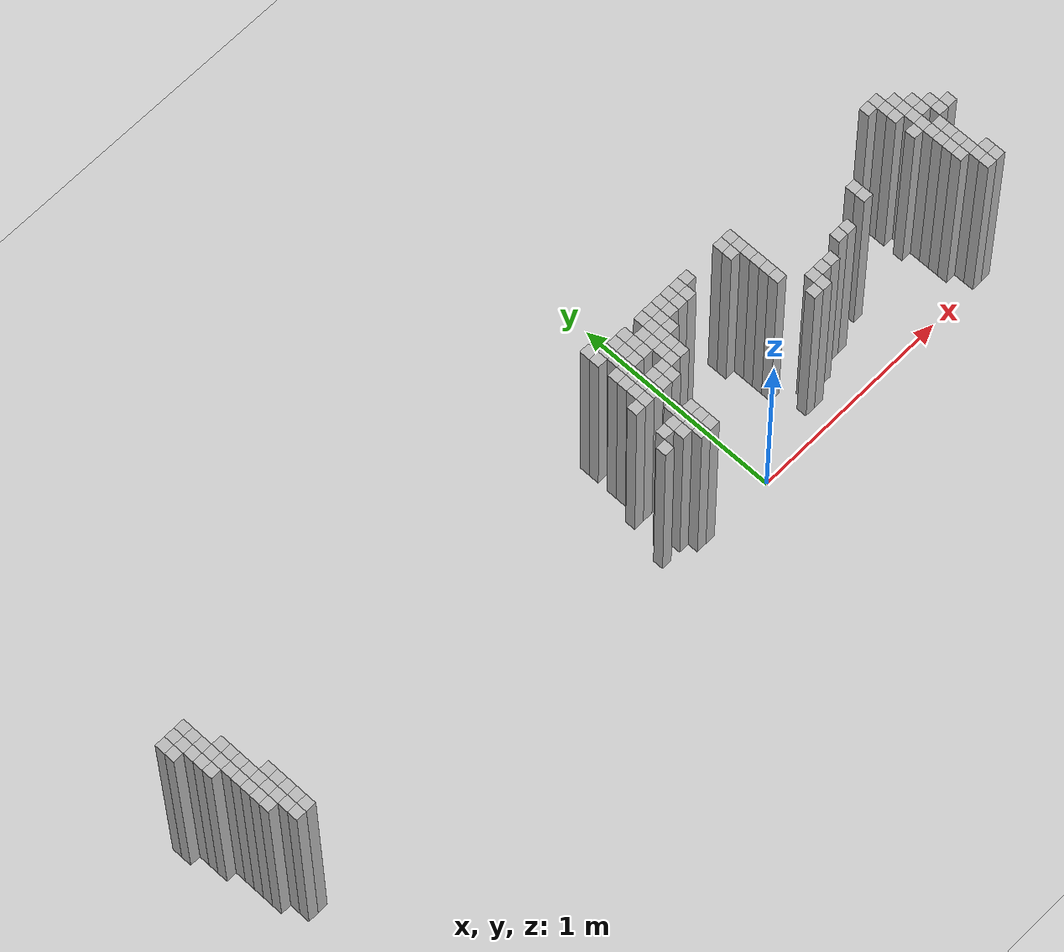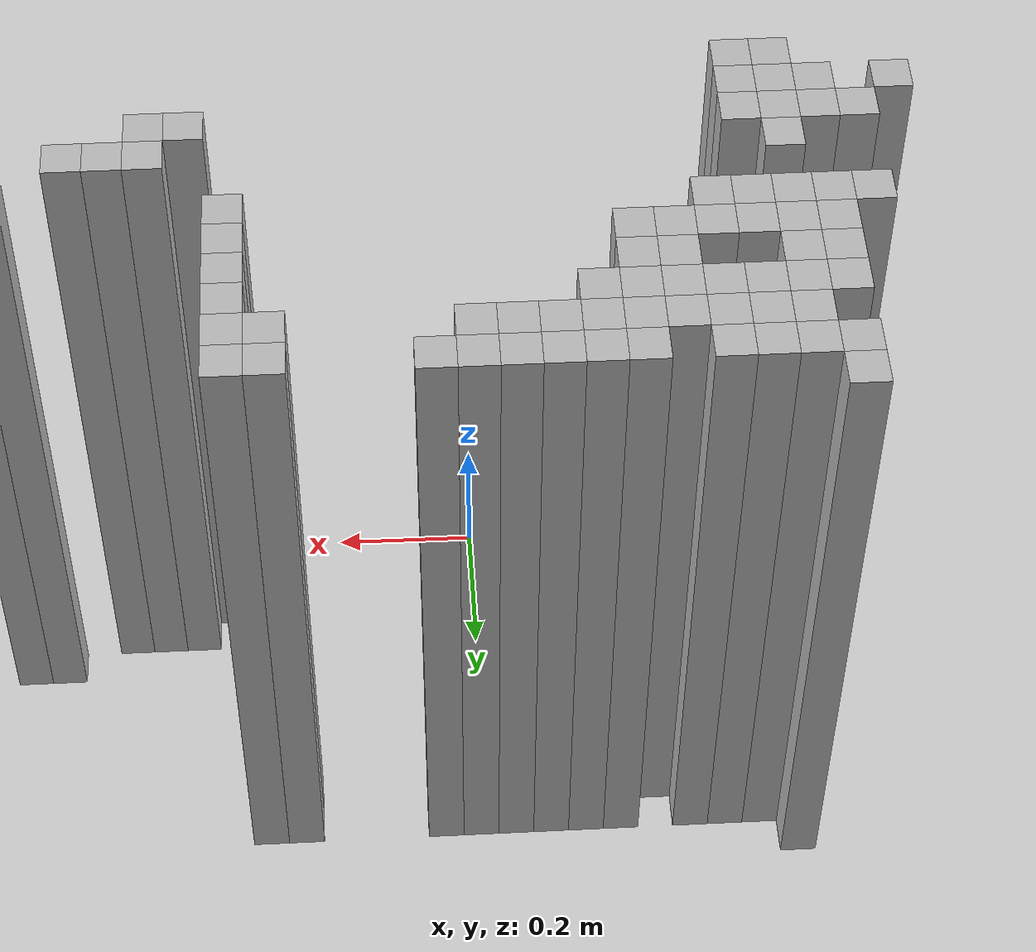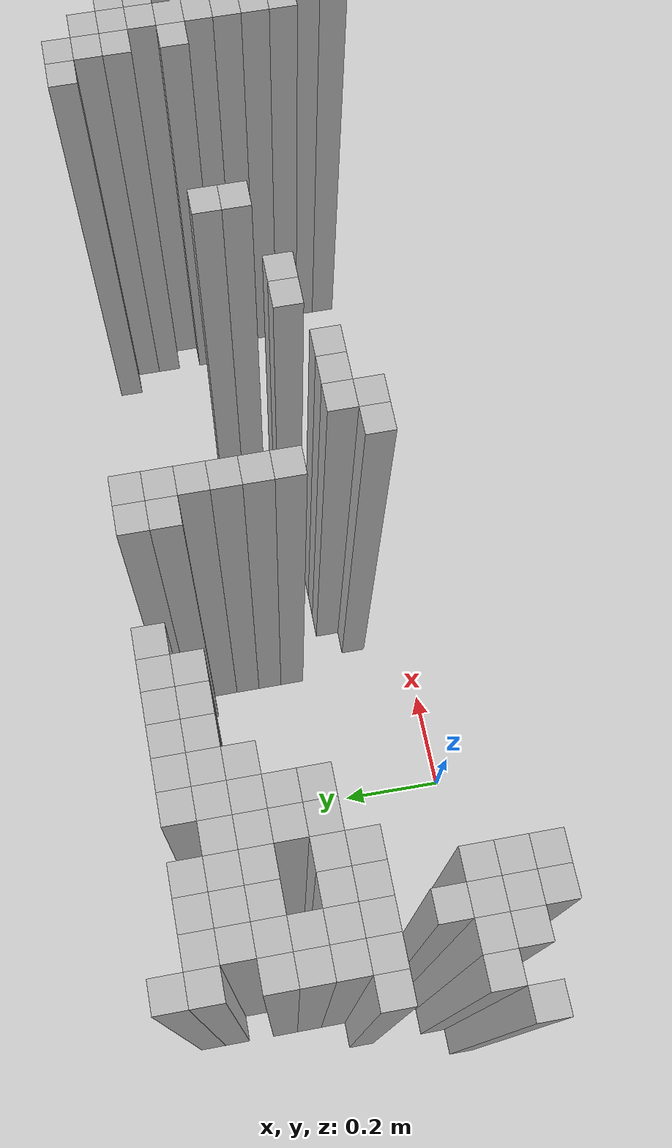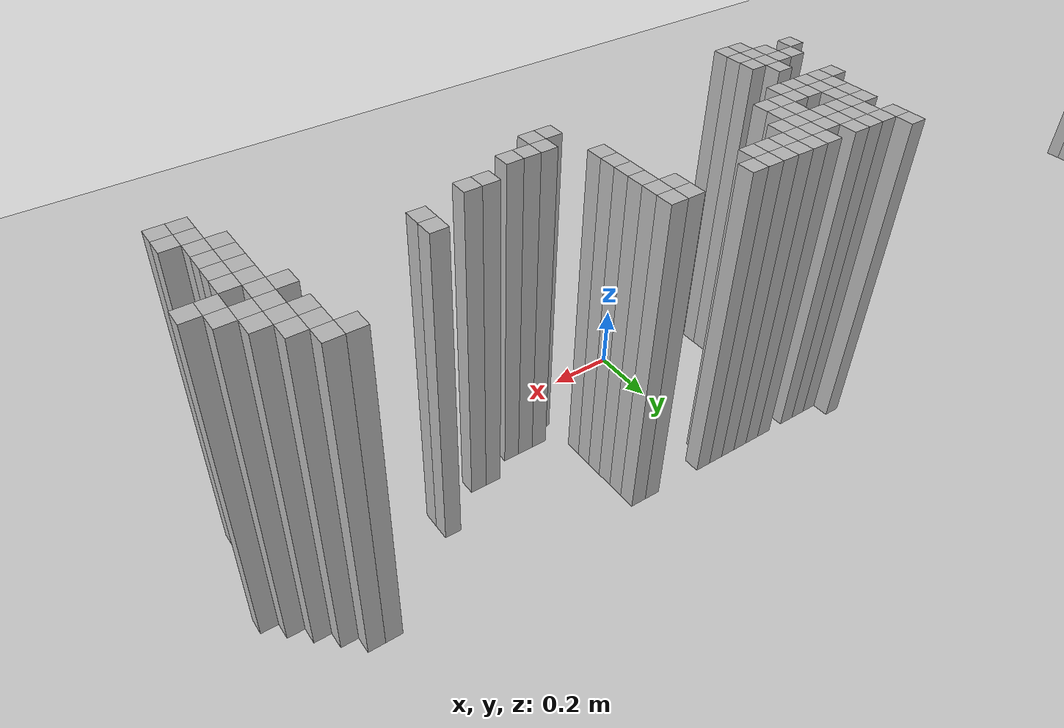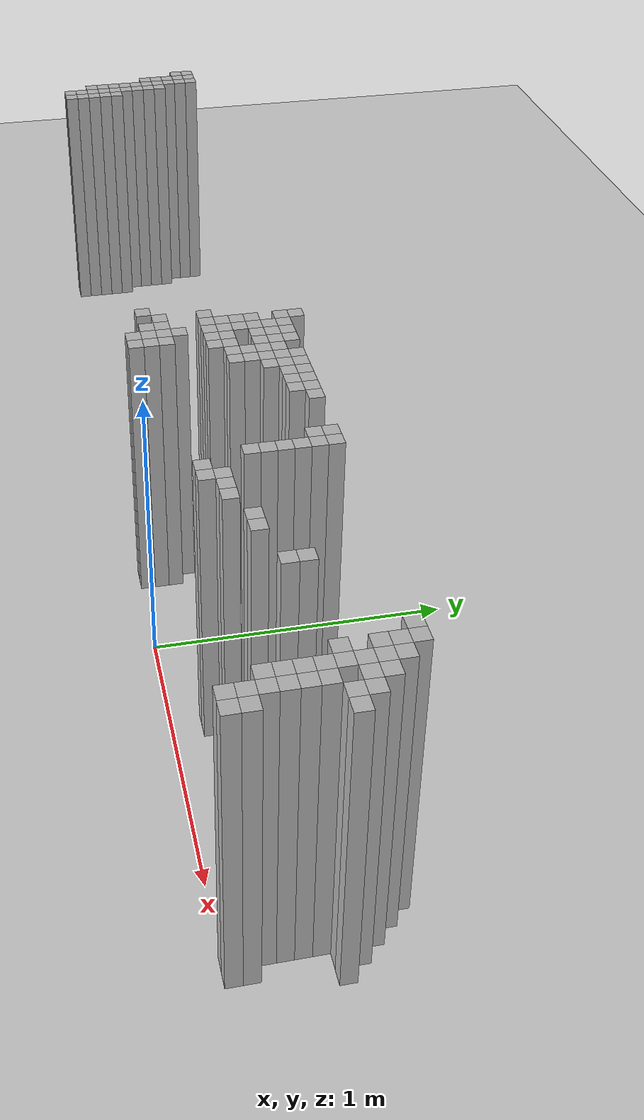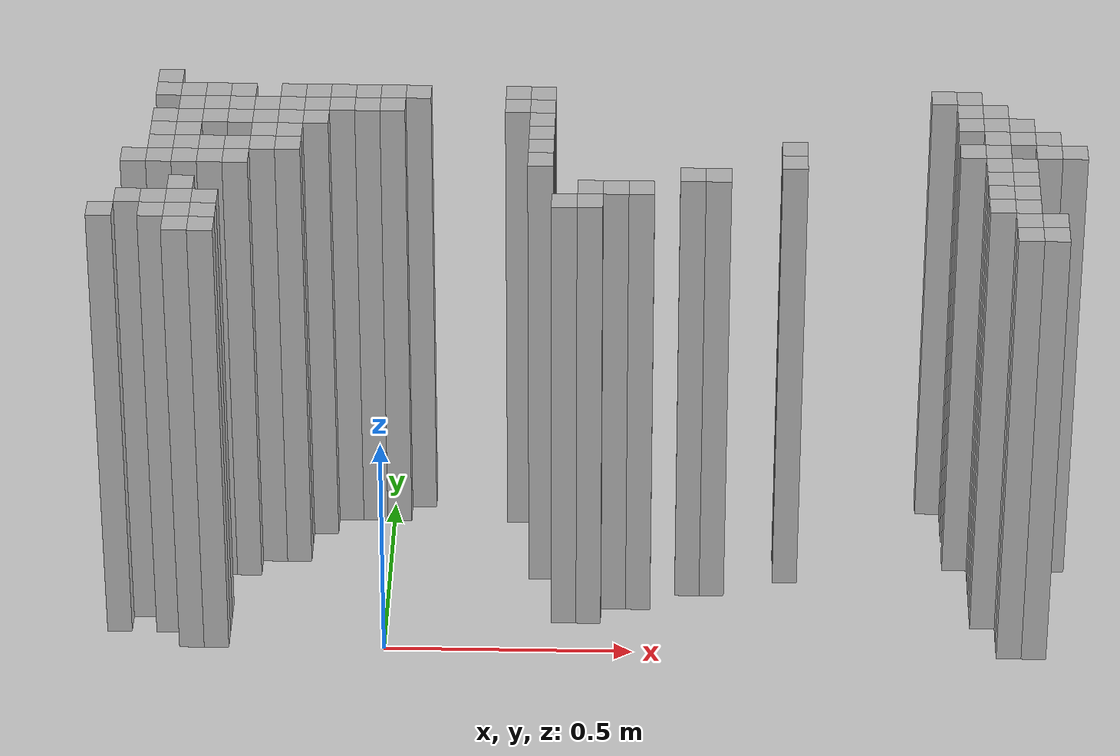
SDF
<sdf version="1.6">
 <world name="default">
  <include><uri>model://ground_plane</uri></include>
  <include><uri>model://sun</uri></include>
  <model name="wall_247">
   <static>true</static>
   <pose>-2.7399999999999998 0.5699999999999998 0.5 0 0 0</pose>
   <link name="link">
    <collision name="collision"><geometry><box><size>0.05 0.05 1</size></box></geometry></collision>
    <visual name="visual"><geometry><box><size>0.05 0.05 1</size></box></geometry></visual>
   </link>
  </model>
  <model name="wall_248">
   <static>true</static>
   <pose>-2.69 0.5699999999999998 0.5 0 0 0</pose>
   <link name="link">
    <collision name="collision"><geometry><box><size>0.05 0.05 1</size></box></geometry></collision>
    <visual name="visual"><geometry><box><size>0.05 0.05 1</size></box></geometry></visual>
   </link>
  </model>
  <model name="wall_249">
   <static>true</static>
   <pose>-2.6399999999999997 0.5699999999999998 0.5 0 0 0</pose>
   <link name="link">
    <collision name="collision"><geometry><box><size>0.05 0.05 1</size></box></geometry></collision>
    <visual name="visual"><geometry><box><size>0.05 0.05 1</size></box></geometry></visual>
   </link>
  </model>
  <model name="wall_250">
   <static>true</static>
   <pose>-0.4399999999999995 0.5699999999999998 0.5 0 0 0</pose>
   <link name="link">
    <collision name="collision"><geometry><box><size>0.05 0.05 1</size></box></geometry></collision>
    <visual name="visual"><geometry><box><size>0.05 0.05 1</size></box></geometry></visual>
   </link>
  </model>
  <model name="wall_260">
   <static>true</static>
   <pose>-2.7399999999999998 0.52 0.5 0 0 0</pose>
   <link name="link">
    <collision name="collision"><geometry><box><size>0.05 0.05 1</size></box></geometry></collision>
    <visual name="visual"><geometry><box><size>0.05 0.05 1</size></box></geometry></visual>
   </link>
  </model>
  <model name="wall_261">
   <static>true</static>
   <pose>-2.69 0.52 0.5 0 0 0</pose>
   <link name="link">
    <collision name="collision"><geometry><box><size>0.05 0.05 1</size></box></geometry></collision>
    <visual name="visual"><geometry><box><size>0.05 0.05 1</size></box></geometry></visual>
   </link>
  </model>
  <model name="wall_262">
   <static>true</static>
   <pose>-2.6399999999999997 0.52 0.5 0 0 0</pose>
   <link name="link">
    <collision name="collision"><geometry><box><size>0.05 0.05 1</size></box></geometry></collision>
    <visual name="visual"><geometry><box><size>0.05 0.05 1</size></box></geometry></visual>
   </link>
  </model>
  <model name="wall_263">
   <static>true</static>
   <pose>-0.4399999999999995 0.52 0.5 0 0 0</pose>
   <link name="link">
    <collision name="collision"><geometry><box><size>0.05 0.05 1</size></box></geometry></collision>
    <visual name="visual"><geometry><box><size>0.05 0.05 1</size></box></geometry></visual>
   </link>
  </model>
  <model name="wall_264">
   <static>true</static>
   <pose>-0.3899999999999997 0.52 0.5 0 0 0</pose>
   <link name="link">
    <collision name="collision"><geometry><box><size>0.05 0.05 1</size></box></geometry></collision>
    <visual name="visual"><geometry><box><size>0.05 0.05 1</size></box></geometry></visual>
   </link>
  </model>
  <model name="wall_265">
   <static>true</static>
   <pose>-0.33999999999999986 0.52 0.5 0 0 0</pose>
   <link name="link">
    <collision name="collision"><geometry><box><size>0.05 0.05 1</size></box></geometry></collision>
    <visual name="visual"><geometry><box><size>0.05 0.05 1</size></box></geometry></visual>
   </link>
  </model>
  <model name="wall_266">
   <static>true</static>
   <pose>-0.2899999999999996 0.52 0.5 0 0 0</pose>
   <link name="link">
    <collision name="collision"><geometry><box><size>0.05 0.05 1</size></box></geometry></collision>
    <visual name="visual"><geometry><box><size>0.05 0.05 1</size></box></geometry></visual>
   </link>
  </model>
  <model name="wall_267">
   <static>true</static>
   <pose>-0.1899999999999995 0.52 0.5 0 0 0</pose>
   <link name="link">
    <collision name="collision"><geometry><box><size>0.05 0.05 1</size></box></geometry></collision>
    <visual name="visual"><geometry><box><size>0.05 0.05 1</size></box></geometry></visual>
   </link>
  </model>
  <model name="wall_268">
   <static>true</static>
   <pose>-0.13999999999999968 0.52 0.5 0 0 0</pose>
   <link name="link">
    <collision name="collision"><geometry><box><size>0.05 0.05 1</size></box></geometry></collision>
    <visual name="visual"><geometry><box><size>0.05 0.05 1</size></box></geometry></visual>
   </link>
  </model>
  <model name="wall_269">
   <static>true</static>
   <pose>-0.08999999999999986 0.52 0.5 0 0 0</pose>
   <link name="link">
    <collision name="collision"><geometry><box><size>0.05 0.05 1</size></box></geometry></collision>
    <visual name="visual"><geometry><box><size>0.05 0.05 1</size></box></geometry></visual>
   </link>
  </model>
  <model name="wall_270">
   <static>true</static>
   <pose>-0.03999999999999959 0.52 0.5 0 0 0</pose>
   <link name="link">
    <collision name="collision"><geometry><box><size>0.05 0.05 1</size></box></geometry></collision>
    <visual name="visual"><geometry><box><size>0.05 0.05 1</size></box></geometry></visual>
   </link>
  </model>
  <model name="wall_271">
   <static>true</static>
   <pose>0.010000000000000231 0.52 0.5 0 0 0</pose>
   <link name="link">
    <collision name="collision"><geometry><box><size>0.05 0.05 1</size></box></geometry></collision>
    <visual name="visual"><geometry><box><size>0.05 0.05 1</size></box></geometry></visual>
   </link>
  </model>
  <model name="wall_272">
   <static>true</static>
   <pose>0.0600000000000005 0.52 0.5 0 0 0</pose>
   <link name="link">
    <collision name="collision"><geometry><box><size>0.05 0.05 1</size></box></geometry></collision>
    <visual name="visual"><geometry><box><size>0.05 0.05 1</size></box></geometry></visual>
   </link>
  </model>
  <model name="wall_273">
   <static>true</static>
   <pose>0.26000000000000023 0.52 0.5 0 0 0</pose>
   <link name="link">
    <collision name="collision"><geometry><box><size>0.05 0.05 1</size></box></geometry></collision>
    <visual name="visual"><geometry><box><size>0.05 0.05 1</size></box></geometry></visual>
   </link>
  </model>
  <model name="wall_274">
   <static>true</static>
   <pose>0.3100000000000005 0.52 0.5 0 0 0</pose>
   <link name="link">
    <collision name="collision"><geometry><box><size>0.05 0.05 1</size></box></geometry></collision>
    <visual name="visual"><geometry><box><size>0.05 0.05 1</size></box></geometry></visual>
   </link>
  </model>
  <model name="wall_275">
   <static>true</static>
   <pose>1.1100000000000003 0.52 0.5 0 0 0</pose>
   <link name="link">
    <collision name="collision"><geometry><box><size>0.05 0.05 1</size></box></geometry></collision>
    <visual name="visual"><geometry><box><size>0.05 0.05 1</size></box></geometry></visual>
   </link>
  </model>
  <model name="wall_276">
   <static>true</static>
   <pose>1.1600000000000001 0.52 0.5 0 0 0</pose>
   <link name="link">
    <collision name="collision"><geometry><box><size>0.05 0.05 1</size></box></geometry></collision>
    <visual name="visual"><geometry><box><size>0.05 0.05 1</size></box></geometry></visual>
   </link>
  </model>
  <model name="wall_277">
   <static>true</static>
   <pose>-2.69 0.4700000000000002 0.5 0 0 0</pose>
   <link name="link">
    <collision name="collision"><geometry><box><size>0.05 0.05 1</size></box></geometry></collision>
    <visual name="visual"><geometry><box><size>0.05 0.05 1</size></box></geometry></visual>
   </link>
  </model>
  <model name="wall_278">
   <static>true</static>
   <pose>-2.6399999999999997 0.4700000000000002 0.5 0 0 0</pose>
   <link name="link">
    <collision name="collision"><geometry><box><size>0.05 0.05 1</size></box></geometry></collision>
    <visual name="visual"><geometry><box><size>0.05 0.05 1</size></box></geometry></visual>
   </link>
  </model>
  <model name="wall_279">
   <static>true</static>
   <pose>-0.3899999999999997 0.4700000000000002 0.5 0 0 0</pose>
   <link name="link">
    <collision name="collision"><geometry><box><size>0.05 0.05 1</size></box></geometry></collision>
    <visual name="visual"><geometry><box><size>0.05 0.05 1</size></box></geometry></visual>
   </link>
  </model>
  <model name="wall_280">
   <static>true</static>
   <pose>-0.33999999999999986 0.4700000000000002 0.5 0 0 0</pose>
   <link name="link">
    <collision name="collision"><geometry><box><size>0.05 0.05 1</size></box></geometry></collision>
    <visual name="visual"><geometry><box><size>0.05 0.05 1</size></box></geometry></visual>
   </link>
  </model>
  <model name="wall_281">
   <static>true</static>
   <pose>-0.2899999999999996 0.4700000000000002 0.5 0 0 0</pose>
   <link name="link">
    <collision name="collision"><geometry><box><size>0.05 0.05 1</size></box></geometry></collision>
    <visual name="visual"><geometry><box><size>0.05 0.05 1</size></box></geometry></visual>
   </link>
  </model>
  <model name="wall_282">
   <static>true</static>
   <pose>-0.23999999999999977 0.4700000000000002 0.5 0 0 0</pose>
   <link name="link">
    <collision name="collision"><geometry><box><size>0.05 0.05 1</size></box></geometry></collision>
    <visual name="visual"><geometry><box><size>0.05 0.05 1</size></box></geometry></visual>
   </link>
  </model>
  <model name="wall_283">
   <static>true</static>
   <pose>-0.1899999999999995 0.4700000000000002 0.5 0 0 0</pose>
   <link name="link">
    <collision name="collision"><geometry><box><size>0.05 0.05 1</size></box></geometry></collision>
    <visual name="visual"><geometry><box><size>0.05 0.05 1</size></box></geometry></visual>
   </link>
  </model>
  <model name="wall_284">
   <static>true</static>
   <pose>-0.13999999999999968 0.4700000000000002 0.5 0 0 0</pose>
   <link name="link">
    <collision name="collision"><geometry><box><size>0.05 0.05 1</size></box></geometry></collision>
    <visual name="visual"><geometry><box><size>0.05 0.05 1</size></box></geometry></visual>
   </link>
  </model>
  <model name="wall_285">
   <static>true</static>
   <pose>-0.08999999999999986 0.4700000000000002 0.5 0 0 0</pose>
   <link name="link">
    <collision name="collision"><geometry><box><size>0.05 0.05 1</size></box></geometry></collision>
    <visual name="visual"><geometry><box><size>0.05 0.05 1</size></box></geometry></visual>
   </link>
  </model>
  <model name="wall_286">
   <static>true</static>
   <pose>-0.03999999999999959 0.4700000000000002 0.5 0 0 0</pose>
   <link name="link">
    <collision name="collision"><geometry><box><size>0.05 0.05 1</size></box></geometry></collision>
    <visual name="visual"><geometry><box><size>0.05 0.05 1</size></box></geometry></visual>
   </link>
  </model>
  <model name="wall_287">
   <static>true</static>
   <pose>0.010000000000000231 0.4700000000000002 0.5 0 0 0</pose>
   <link name="link">
    <collision name="collision"><geometry><box><size>0.05 0.05 1</size></box></geometry></collision>
    <visual name="visual"><geometry><box><size>0.05 0.05 1</size></box></geometry></visual>
   </link>
  </model>
  <model name="wall_288">
   <static>true</static>
   <pose>0.26000000000000023 0.4700000000000002 0.5 0 0 0</pose>
   <link name="link">
    <collision name="collision"><geometry><box><size>0.05 0.05 1</size></box></geometry></collision>
    <visual name="visual"><geometry><box><size>0.05 0.05 1</size></box></geometry></visual>
   </link>
  </model>
  <model name="wall_289">
   <static>true</static>
   <pose>0.3100000000000005 0.4700000000000002 0.5 0 0 0</pose>
   <link name="link">
    <collision name="collision"><geometry><box><size>0.05 0.05 1</size></box></geometry></collision>
    <visual name="visual"><geometry><box><size>0.05 0.05 1</size></box></geometry></visual>
   </link>
  </model>
  <model name="wall_290">
   <static>true</static>
   <pose>1.1600000000000001 0.4700000000000002 0.5 0 0 0</pose>
   <link name="link">
    <collision name="collision"><geometry><box><size>0.05 0.05 1</size></box></geometry></collision>
    <visual name="visual"><geometry><box><size>0.05 0.05 1</size></box></geometry></visual>
   </link>
  </model>
  <model name="wall_291">
   <static>true</static>
   <pose>1.21 0.4700000000000002 0.5 0 0 0</pose>
   <link name="link">
    <collision name="collision"><geometry><box><size>0.05 0.05 1</size></box></geometry></collision>
    <visual name="visual"><geometry><box><size>0.05 0.05 1</size></box></geometry></visual>
   </link>
  </model>
  <model name="wall_292">
   <static>true</static>
   <pose>-2.69 0.41999999999999993 0.5 0 0 0</pose>
   <link name="link">
    <collision name="collision"><geometry><box><size>0.05 0.05 1</size></box></geometry></collision>
    <visual name="visual"><geometry><box><size>0.05 0.05 1</size></box></geometry></visual>
   </link>
  </model>
  <model name="wall_293">
   <static>true</static>
   <pose>-2.6399999999999997 0.41999999999999993 0.5 0 0 0</pose>
   <link name="link">
    <collision name="collision"><geometry><box><size>0.05 0.05 1</size></box></geometry></collision>
    <visual name="visual"><geometry><box><size>0.05 0.05 1</size></box></geometry></visual>
   </link>
  </model>
  <model name="wall_294">
   <static>true</static>
   <pose>-2.59 0.41999999999999993 0.5 0 0 0</pose>
   <link name="link">
    <collision name="collision"><geometry><box><size>0.05 0.05 1</size></box></geometry></collision>
    <visual name="visual"><geometry><box><size>0.05 0.05 1</size></box></geometry></visual>
   </link>
  </model>
  <model name="wall_295">
   <static>true</static>
   <pose>-0.4399999999999995 0.41999999999999993 0.5 0 0 0</pose>
   <link name="link">
    <collision name="collision"><geometry><box><size>0.05 0.05 1</size></box></geometry></collision>
    <visual name="visual"><geometry><box><size>0.05 0.05 1</size></box></geometry></visual>
   </link>
  </model>
  <model name="wall_296">
   <static>true</static>
   <pose>-0.3899999999999997 0.41999999999999993 0.5 0 0 0</pose>
   <link name="link">
    <collision name="collision"><geometry><box><size>0.05 0.05 1</size></box></geometry></collision>
    <visual name="visual"><geometry><box><size>0.05 0.05 1</size></box></geometry></visual>
   </link>
  </model>
  <model name="wall_297">
   <static>true</static>
   <pose>-0.33999999999999986 0.41999999999999993 0.5 0 0 0</pose>
   <link name="link">
    <collision name="collision"><geometry><box><size>0.05 0.05 1</size></box></geometry></collision>
    <visual name="visual"><geometry><box><size>0.05 0.05 1</size></box></geometry></visual>
   </link>
  </model>
  <model name="wall_298">
   <static>true</static>
   <pose>-0.2899999999999996 0.41999999999999993 0.5 0 0 0</pose>
   <link name="link">
    <collision name="collision"><geometry><box><size>0.05 0.05 1</size></box></geometry></collision>
    <visual name="visual"><geometry><box><size>0.05 0.05 1</size></box></geometry></visual>
   </link>
  </model>
  <model name="wall_299">
   <static>true</static>
   <pose>-0.23999999999999977 0.41999999999999993 0.5 0 0 0</pose>
   <link name="link">
    <collision name="collision"><geometry><box><size>0.05 0.05 1</size></box></geometry></collision>
    <visual name="visual"><geometry><box><size>0.05 0.05 1</size></box></geometry></visual>
   </link>
  </model>
  <model name="wall_300">
   <static>true</static>
   <pose>-0.1899999999999995 0.41999999999999993 0.5 0 0 0</pose>
   <link name="link">
    <collision name="collision"><geometry><box><size>0.05 0.05 1</size></box></geometry></collision>
    <visual name="visual"><geometry><box><size>0.05 0.05 1</size></box></geometry></visual>
   </link>
  </model>
  <model name="wall_301">
   <static>true</static>
   <pose>-0.13999999999999968 0.41999999999999993 0.5 0 0 0</pose>
   <link name="link">
    <collision name="collision"><geometry><box><size>0.05 0.05 1</size></box></geometry></collision>
    <visual name="visual"><geometry><box><size>0.05 0.05 1</size></box></geometry></visual>
   </link>
  </model>
  <model name="wall_302">
   <static>true</static>
   <pose>0.3100000000000005 0.41999999999999993 0.5 0 0 0</pose>
   <link name="link">
    <collision name="collision"><geometry><box><size>0.05 0.05 1</size></box></geometry></collision>
    <visual name="visual"><geometry><box><size>0.05 0.05 1</size></box></geometry></visual>
   </link>
  </model>
  <model name="wall_303">
   <static>true</static>
   <pose>1.1600000000000001 0.41999999999999993 0.5 0 0 0</pose>
   <link name="link">
    <collision name="collision"><geometry><box><size>0.05 0.05 1</size></box></geometry></collision>
    <visual name="visual"><geometry><box><size>0.05 0.05 1</size></box></geometry></visual>
   </link>
  </model>
  <model name="wall_304">
   <static>true</static>
   <pose>1.21 0.41999999999999993 0.5 0 0 0</pose>
   <link name="link">
    <collision name="collision"><geometry><box><size>0.05 0.05 1</size></box></geometry></collision>
    <visual name="visual"><geometry><box><size>0.05 0.05 1</size></box></geometry></visual>
   </link>
  </model>
  <model name="wall_305">
   <static>true</static>
   <pose>1.2600000000000007 0.41999999999999993 0.5 0 0 0</pose>
   <link name="link">
    <collision name="collision"><geometry><box><size>0.05 0.05 1</size></box></geometry></collision>
    <visual name="visual"><geometry><box><size>0.05 0.05 1</size></box></geometry></visual>
   </link>
  </model>
  <model name="wall_306">
   <static>true</static>
   <pose>-2.69 0.3700000000000001 0.5 0 0 0</pose>
   <link name="link">
    <collision name="collision"><geometry><box><size>0.05 0.05 1</size></box></geometry></collision>
    <visual name="visual"><geometry><box><size>0.05 0.05 1</size></box></geometry></visual>
   </link>
  </model>
  <model name="wall_307">
   <static>true</static>
   <pose>-2.6399999999999997 0.3700000000000001 0.5 0 0 0</pose>
   <link name="link">
    <collision name="collision"><geometry><box><size>0.05 0.05 1</size></box></geometry></collision>
    <visual name="visual"><geometry><box><size>0.05 0.05 1</size></box></geometry></visual>
   </link>
  </model>
  <model name="wall_308">
   <static>true</static>
   <pose>-2.59 0.3700000000000001 0.5 0 0 0</pose>
   <link name="link">
    <collision name="collision"><geometry><box><size>0.05 0.05 1</size></box></geometry></collision>
    <visual name="visual"><geometry><box><size>0.05 0.05 1</size></box></geometry></visual>
   </link>
  </model>
  <model name="wall_309">
   <static>true</static>
   <pose>-0.4399999999999995 0.3700000000000001 0.5 0 0 0</pose>
   <link name="link">
    <collision name="collision"><geometry><box><size>0.05 0.05 1</size></box></geometry></collision>
    <visual name="visual"><geometry><box><size>0.05 0.05 1</size></box></geometry></visual>
   </link>
  </model>
  <model name="wall_310">
   <static>true</static>
   <pose>-0.3899999999999997 0.3700000000000001 0.5 0 0 0</pose>
   <link name="link">
    <collision name="collision"><geometry><box><size>0.05 0.05 1</size></box></geometry></collision>
    <visual name="visual"><geometry><box><size>0.05 0.05 1</size></box></geometry></visual>
   </link>
  </model>
  <model name="wall_311">
   <static>true</static>
   <pose>-0.23999999999999977 0.3700000000000001 0.5 0 0 0</pose>
   <link name="link">
    <collision name="collision"><geometry><box><size>0.05 0.05 1</size></box></geometry></collision>
    <visual name="visual"><geometry><box><size>0.05 0.05 1</size></box></geometry></visual>
   </link>
  </model>
  <model name="wall_312">
   <static>true</static>
   <pose>-0.1899999999999995 0.3700000000000001 0.5 0 0 0</pose>
   <link name="link">
    <collision name="collision"><geometry><box><size>0.05 0.05 1</size></box></geometry></collision>
    <visual name="visual"><geometry><box><size>0.05 0.05 1</size></box></geometry></visual>
   </link>
  </model>
  <model name="wall_313">
   <static>true</static>
   <pose>0.3100000000000005 0.3700000000000001 0.5 0 0 0</pose>
   <link name="link">
    <collision name="collision"><geometry><box><size>0.05 0.05 1</size></box></geometry></collision>
    <visual name="visual"><geometry><box><size>0.05 0.05 1</size></box></geometry></visual>
   </link>
  </model>
  <model name="wall_314">
   <static>true</static>
   <pose>1.21 0.3700000000000001 0.5 0 0 0</pose>
   <link name="link">
    <collision name="collision"><geometry><box><size>0.05 0.05 1</size></box></geometry></collision>
    <visual name="visual"><geometry><box><size>0.05 0.05 1</size></box></geometry></visual>
   </link>
  </model>
  <model name="wall_315">
   <static>true</static>
   <pose>1.2600000000000007 0.3700000000000001 0.5 0 0 0</pose>
   <link name="link">
    <collision name="collision"><geometry><box><size>0.05 0.05 1</size></box></geometry></collision>
    <visual name="visual"><geometry><box><size>0.05 0.05 1</size></box></geometry></visual>
   </link>
  </model>
  <model name="wall_316">
   <static>true</static>
   <pose>1.3100000000000005 0.3700000000000001 0.5 0 0 0</pose>
   <link name="link">
    <collision name="collision"><geometry><box><size>0.05 0.05 1</size></box></geometry></collision>
    <visual name="visual"><geometry><box><size>0.05 0.05 1</size></box></geometry></visual>
   </link>
  </model>
  <model name="wall_317">
   <static>true</static>
   <pose>-2.6399999999999997 0.31999999999999984 0.5 0 0 0</pose>
   <link name="link">
    <collision name="collision"><geometry><box><size>0.05 0.05 1</size></box></geometry></collision>
    <visual name="visual"><geometry><box><size>0.05 0.05 1</size></box></geometry></visual>
   </link>
  </model>
  <model name="wall_318">
   <static>true</static>
   <pose>-2.59 0.31999999999999984 0.5 0 0 0</pose>
   <link name="link">
    <collision name="collision"><geometry><box><size>0.05 0.05 1</size></box></geometry></collision>
    <visual name="visual"><geometry><box><size>0.05 0.05 1</size></box></geometry></visual>
   </link>
  </model>
  <model name="wall_319">
   <static>true</static>
   <pose>-0.4399999999999995 0.31999999999999984 0.5 0 0 0</pose>
   <link name="link">
    <collision name="collision"><geometry><box><size>0.05 0.05 1</size></box></geometry></collision>
    <visual name="visual"><geometry><box><size>0.05 0.05 1</size></box></geometry></visual>
   </link>
  </model>
  <model name="wall_320">
   <static>true</static>
   <pose>-0.3899999999999997 0.31999999999999984 0.5 0 0 0</pose>
   <link name="link">
    <collision name="collision"><geometry><box><size>0.05 0.05 1</size></box></geometry></collision>
    <visual name="visual"><geometry><box><size>0.05 0.05 1</size></box></geometry></visual>
   </link>
  </model>
  <model name="wall_321">
   <static>true</static>
   <pose>-0.33999999999999986 0.31999999999999984 0.5 0 0 0</pose>
   <link name="link">
    <collision name="collision"><geometry><box><size>0.05 0.05 1</size></box></geometry></collision>
    <visual name="visual"><geometry><box><size>0.05 0.05 1</size></box></geometry></visual>
   </link>
  </model>
  <model name="wall_322">
   <static>true</static>
   <pose>-0.2899999999999996 0.31999999999999984 0.5 0 0 0</pose>
   <link name="link">
    <collision name="collision"><geometry><box><size>0.05 0.05 1</size></box></geometry></collision>
    <visual name="visual"><geometry><box><size>0.05 0.05 1</size></box></geometry></visual>
   </link>
  </model>
  <model name="wall_323">
   <static>true</static>
   <pose>-0.23999999999999977 0.31999999999999984 0.5 0 0 0</pose>
   <link name="link">
    <collision name="collision"><geometry><box><size>0.05 0.05 1</size></box></geometry></collision>
    <visual name="visual"><geometry><box><size>0.05 0.05 1</size></box></geometry></visual>
   </link>
  </model>
  <model name="wall_324">
   <static>true</static>
   <pose>-0.1899999999999995 0.31999999999999984 0.5 0 0 0</pose>
   <link name="link">
    <collision name="collision"><geometry><box><size>0.05 0.05 1</size></box></geometry></collision>
    <visual name="visual"><geometry><box><size>0.05 0.05 1</size></box></geometry></visual>
   </link>
  </model>
  <model name="wall_325">
   <static>true</static>
   <pose>0.3100000000000005 0.31999999999999984 0.5 0 0 0</pose>
   <link name="link">
    <collision name="collision"><geometry><box><size>0.05 0.05 1</size></box></geometry></collision>
    <visual name="visual"><geometry><box><size>0.05 0.05 1</size></box></geometry></visual>
   </link>
  </model>
  <model name="wall_326">
   <static>true</static>
   <pose>0.8100000000000005 0.31999999999999984 0.5 0 0 0</pose>
   <link name="link">
    <collision name="collision"><geometry><box><size>0.05 0.05 1</size></box></geometry></collision>
    <visual name="visual"><geometry><box><size>0.05 0.05 1</size></box></geometry></visual>
   </link>
  </model>
  <model name="wall_327">
   <static>true</static>
   <pose>1.1600000000000001 0.31999999999999984 0.5 0 0 0</pose>
   <link name="link">
    <collision name="collision"><geometry><box><size>0.05 0.05 1</size></box></geometry></collision>
    <visual name="visual"><geometry><box><size>0.05 0.05 1</size></box></geometry></visual>
   </link>
  </model>
  <model name="wall_328">
   <static>true</static>
   <pose>1.21 0.31999999999999984 0.5 0 0 0</pose>
   <link name="link">
    <collision name="collision"><geometry><box><size>0.05 0.05 1</size></box></geometry></collision>
    <visual name="visual"><geometry><box><size>0.05 0.05 1</size></box></geometry></visual>
   </link>
  </model>
  <model name="wall_329">
   <static>true</static>
   <pose>1.3100000000000005 0.31999999999999984 0.5 0 0 0</pose>
   <link name="link">
    <collision name="collision"><geometry><box><size>0.05 0.05 1</size></box></geometry></collision>
    <visual name="visual"><geometry><box><size>0.05 0.05 1</size></box></geometry></visual>
   </link>
  </model>
  <model name="wall_330">
   <static>true</static>
   <pose>1.3600000000000003 0.31999999999999984 0.5 0 0 0</pose>
   <link name="link">
    <collision name="collision"><geometry><box><size>0.05 0.05 1</size></box></geometry></collision>
    <visual name="visual"><geometry><box><size>0.05 0.05 1</size></box></geometry></visual>
   </link>
  </model>
  <model name="wall_331">
   <static>true</static>
   <pose>-2.6399999999999997 0.27 0.5 0 0 0</pose>
   <link name="link">
    <collision name="collision"><geometry><box><size>0.05 0.05 1</size></box></geometry></collision>
    <visual name="visual"><geometry><box><size>0.05 0.05 1</size></box></geometry></visual>
   </link>
  </model>
  <model name="wall_332">
   <static>true</static>
   <pose>-2.59 0.27 0.5 0 0 0</pose>
   <link name="link">
    <collision name="collision"><geometry><box><size>0.05 0.05 1</size></box></geometry></collision>
    <visual name="visual"><geometry><box><size>0.05 0.05 1</size></box></geometry></visual>
   </link>
  </model>
  <model name="wall_333">
   <static>true</static>
   <pose>-0.48999999999999977 0.27 0.5 0 0 0</pose>
   <link name="link">
    <collision name="collision"><geometry><box><size>0.05 0.05 1</size></box></geometry></collision>
    <visual name="visual"><geometry><box><size>0.05 0.05 1</size></box></geometry></visual>
   </link>
  </model>
  <model name="wall_334">
   <static>true</static>
   <pose>-0.4399999999999995 0.27 0.5 0 0 0</pose>
   <link name="link">
    <collision name="collision"><geometry><box><size>0.05 0.05 1</size></box></geometry></collision>
    <visual name="visual"><geometry><box><size>0.05 0.05 1</size></box></geometry></visual>
   </link>
  </model>
  <model name="wall_335">
   <static>true</static>
   <pose>-0.3899999999999997 0.27 0.5 0 0 0</pose>
   <link name="link">
    <collision name="collision"><geometry><box><size>0.05 0.05 1</size></box></geometry></collision>
    <visual name="visual"><geometry><box><size>0.05 0.05 1</size></box></geometry></visual>
   </link>
  </model>
  <model name="wall_336">
   <static>true</static>
   <pose>-0.33999999999999986 0.27 0.5 0 0 0</pose>
   <link name="link">
    <collision name="collision"><geometry><box><size>0.05 0.05 1</size></box></geometry></collision>
    <visual name="visual"><geometry><box><size>0.05 0.05 1</size></box></geometry></visual>
   </link>
  </model>
  <model name="wall_337">
   <static>true</static>
   <pose>-0.2899999999999996 0.27 0.5 0 0 0</pose>
   <link name="link">
    <collision name="collision"><geometry><box><size>0.05 0.05 1</size></box></geometry></collision>
    <visual name="visual"><geometry><box><size>0.05 0.05 1</size></box></geometry></visual>
   </link>
  </model>
  <model name="wall_338">
   <static>true</static>
   <pose>0.3100000000000005 0.27 0.5 0 0 0</pose>
   <link name="link">
    <collision name="collision"><geometry><box><size>0.05 0.05 1</size></box></geometry></collision>
    <visual name="visual"><geometry><box><size>0.05 0.05 1</size></box></geometry></visual>
   </link>
  </model>
  <model name="wall_339">
   <static>true</static>
   <pose>0.8100000000000005 0.27 0.5 0 0 0</pose>
   <link name="link">
    <collision name="collision"><geometry><box><size>0.05 0.05 1</size></box></geometry></collision>
    <visual name="visual"><geometry><box><size>0.05 0.05 1</size></box></geometry></visual>
   </link>
  </model>
  <model name="wall_340">
   <static>true</static>
   <pose>1.21 0.27 0.5 0 0 0</pose>
   <link name="link">
    <collision name="collision"><geometry><box><size>0.05 0.05 1</size></box></geometry></collision>
    <visual name="visual"><geometry><box><size>0.05 0.05 1</size></box></geometry></visual>
   </link>
  </model>
  <model name="wall_341">
   <static>true</static>
   <pose>1.2600000000000007 0.27 0.5 0 0 0</pose>
   <link name="link">
    <collision name="collision"><geometry><box><size>0.05 0.05 1</size></box></geometry></collision>
    <visual name="visual"><geometry><box><size>0.05 0.05 1</size></box></geometry></visual>
   </link>
  </model>
  <model name="wall_342">
   <static>true</static>
   <pose>-2.6399999999999997 0.2200000000000002 0.5 0 0 0</pose>
   <link name="link">
    <collision name="collision"><geometry><box><size>0.05 0.05 1</size></box></geometry></collision>
    <visual name="visual"><geometry><box><size>0.05 0.05 1</size></box></geometry></visual>
   </link>
  </model>
  <model name="wall_343">
   <static>true</static>
   <pose>-2.59 0.2200000000000002 0.5 0 0 0</pose>
   <link name="link">
    <collision name="collision"><geometry><box><size>0.05 0.05 1</size></box></geometry></collision>
    <visual name="visual"><geometry><box><size>0.05 0.05 1</size></box></geometry></visual>
   </link>
  </model>
  <model name="wall_344">
   <static>true</static>
   <pose>-2.54 0.2200000000000002 0.5 0 0 0</pose>
   <link name="link">
    <collision name="collision"><geometry><box><size>0.05 0.05 1</size></box></geometry></collision>
    <visual name="visual"><geometry><box><size>0.05 0.05 1</size></box></geometry></visual>
   </link>
  </model>
  <model name="wall_345">
   <static>true</static>
   <pose>0.6100000000000003 0.2200000000000002 0.5 0 0 0</pose>
   <link name="link">
    <collision name="collision"><geometry><box><size>0.05 0.05 1</size></box></geometry></collision>
    <visual name="visual"><geometry><box><size>0.05 0.05 1</size></box></geometry></visual>
   </link>
  </model>
  <model name="wall_346">
   <static>true</static>
   <pose>0.6600000000000001 0.2200000000000002 0.5 0 0 0</pose>
   <link name="link">
    <collision name="collision"><geometry><box><size>0.05 0.05 1</size></box></geometry></collision>
    <visual name="visual"><geometry><box><size>0.05 0.05 1</size></box></geometry></visual>
   </link>
  </model>
  <model name="wall_347">
   <static>true</static>
   <pose>1.21 0.2200000000000002 0.5 0 0 0</pose>
   <link name="link">
    <collision name="collision"><geometry><box><size>0.05 0.05 1</size></box></geometry></collision>
    <visual name="visual"><geometry><box><size>0.05 0.05 1</size></box></geometry></visual>
   </link>
  </model>
  <model name="wall_348">
   <static>true</static>
   <pose>1.2600000000000007 0.2200000000000002 0.5 0 0 0</pose>
   <link name="link">
    <collision name="collision"><geometry><box><size>0.05 0.05 1</size></box></geometry></collision>
    <visual name="visual"><geometry><box><size>0.05 0.05 1</size></box></geometry></visual>
   </link>
  </model>
  <model name="wall_349">
   <static>true</static>
   <pose>-2.6399999999999997 0.16999999999999993 0.5 0 0 0</pose>
   <link name="link">
    <collision name="collision"><geometry><box><size>0.05 0.05 1</size></box></geometry></collision>
    <visual name="visual"><geometry><box><size>0.05 0.05 1</size></box></geometry></visual>
   </link>
  </model>
  <model name="wall_350">
   <static>true</static>
   <pose>-2.59 0.16999999999999993 0.5 0 0 0</pose>
   <link name="link">
    <collision name="collision"><geometry><box><size>0.05 0.05 1</size></box></geometry></collision>
    <visual name="visual"><geometry><box><size>0.05 0.05 1</size></box></geometry></visual>
   </link>
  </model>
  <model name="wall_351">
   <static>true</static>
   <pose>-2.54 0.16999999999999993 0.5 0 0 0</pose>
   <link name="link">
    <collision name="collision"><geometry><box><size>0.05 0.05 1</size></box></geometry></collision>
    <visual name="visual"><geometry><box><size>0.05 0.05 1</size></box></geometry></visual>
   </link>
  </model>
  <model name="wall_352">
   <static>true</static>
   <pose>-0.3899999999999997 0.16999999999999993 0.5 0 0 0</pose>
   <link name="link">
    <collision name="collision"><geometry><box><size>0.05 0.05 1</size></box></geometry></collision>
    <visual name="visual"><geometry><box><size>0.05 0.05 1</size></box></geometry></visual>
   </link>
  </model>
  <model name="wall_353">
   <static>true</static>
   <pose>0.41000000000000014 0.16999999999999993 0.5 0 0 0</pose>
   <link name="link">
    <collision name="collision"><geometry><box><size>0.05 0.05 1</size></box></geometry></collision>
    <visual name="visual"><geometry><box><size>0.05 0.05 1</size></box></geometry></visual>
   </link>
  </model>
  <model name="wall_354">
   <static>true</static>
   <pose>0.4600000000000004 0.16999999999999993 0.5 0 0 0</pose>
   <link name="link">
    <collision name="collision"><geometry><box><size>0.05 0.05 1</size></box></geometry></collision>
    <visual name="visual"><geometry><box><size>0.05 0.05 1</size></box></geometry></visual>
   </link>
  </model>
  <model name="wall_355">
   <static>true</static>
   <pose>0.5100000000000002 0.16999999999999993 0.5 0 0 0</pose>
   <link name="link">
    <collision name="collision"><geometry><box><size>0.05 0.05 1</size></box></geometry></collision>
    <visual name="visual"><geometry><box><size>0.05 0.05 1</size></box></geometry></visual>
   </link>
  </model>
  <model name="wall_356">
   <static>true</static>
   <pose>1.21 0.16999999999999993 0.5 0 0 0</pose>
   <link name="link">
    <collision name="collision"><geometry><box><size>0.05 0.05 1</size></box></geometry></collision>
    <visual name="visual"><geometry><box><size>0.05 0.05 1</size></box></geometry></visual>
   </link>
  </model>
  <model name="wall_357">
   <static>true</static>
   <pose>1.2600000000000007 0.16999999999999993 0.5 0 0 0</pose>
   <link name="link">
    <collision name="collision"><geometry><box><size>0.05 0.05 1</size></box></geometry></collision>
    <visual name="visual"><geometry><box><size>0.05 0.05 1</size></box></geometry></visual>
   </link>
  </model>
  <model name="wall_358">
   <static>true</static>
   <pose>-2.6399999999999997 0.1200000000000001 0.5 0 0 0</pose>
   <link name="link">
    <collision name="collision"><geometry><box><size>0.05 0.05 1</size></box></geometry></collision>
    <visual name="visual"><geometry><box><size>0.05 0.05 1</size></box></geometry></visual>
   </link>
  </model>
  <model name="wall_359">
   <static>true</static>
   <pose>-2.59 0.1200000000000001 0.5 0 0 0</pose>
   <link name="link">
    <collision name="collision"><geometry><box><size>0.05 0.05 1</size></box></geometry></collision>
    <visual name="visual"><geometry><box><size>0.05 0.05 1</size></box></geometry></visual>
   </link>
  </model>
  <model name="wall_360">
   <static>true</static>
   <pose>-2.54 0.1200000000000001 0.5 0 0 0</pose>
   <link name="link">
    <collision name="collision"><geometry><box><size>0.05 0.05 1</size></box></geometry></collision>
    <visual name="visual"><geometry><box><size>0.05 0.05 1</size></box></geometry></visual>
   </link>
  </model>
  <model name="wall_361">
   <static>true</static>
   <pose>-0.48999999999999977 0.1200000000000001 0.5 0 0 0</pose>
   <link name="link">
    <collision name="collision"><geometry><box><size>0.05 0.05 1</size></box></geometry></collision>
    <visual name="visual"><geometry><box><size>0.05 0.05 1</size></box></geometry></visual>
   </link>
  </model>
  <model name="wall_362">
   <static>true</static>
   <pose>-0.4399999999999995 0.1200000000000001 0.5 0 0 0</pose>
   <link name="link">
    <collision name="collision"><geometry><box><size>0.05 0.05 1</size></box></geometry></collision>
    <visual name="visual"><geometry><box><size>0.05 0.05 1</size></box></geometry></visual>
   </link>
  </model>
  <model name="wall_363">
   <static>true</static>
   <pose>-0.3899999999999997 0.1200000000000001 0.5 0 0 0</pose>
   <link name="link">
    <collision name="collision"><geometry><box><size>0.05 0.05 1</size></box></geometry></collision>
    <visual name="visual"><geometry><box><size>0.05 0.05 1</size></box></geometry></visual>
   </link>
  </model>
  <model name="wall_364">
   <static>true</static>
   <pose>-0.33999999999999986 0.1200000000000001 0.5 0 0 0</pose>
   <link name="link">
    <collision name="collision"><geometry><box><size>0.05 0.05 1</size></box></geometry></collision>
    <visual name="visual"><geometry><box><size>0.05 0.05 1</size></box></geometry></visual>
   </link>
  </model>
  <model name="wall_365">
   <static>true</static>
   <pose>0.3600000000000003 0.1200000000000001 0.5 0 0 0</pose>
   <link name="link">
    <collision name="collision"><geometry><box><size>0.05 0.05 1</size></box></geometry></collision>
    <visual name="visual"><geometry><box><size>0.05 0.05 1</size></box></geometry></visual>
   </link>
  </model>
  <model name="wall_366">
   <static>true</static>
   <pose>0.41000000000000014 0.1200000000000001 0.5 0 0 0</pose>
   <link name="link">
    <collision name="collision"><geometry><box><size>0.05 0.05 1</size></box></geometry></collision>
    <visual name="visual"><geometry><box><size>0.05 0.05 1</size></box></geometry></visual>
   </link>
  </model>
  <model name="wall_367">
   <static>true</static>
   <pose>1.21 0.1200000000000001 0.5 0 0 0</pose>
   <link name="link">
    <collision name="collision"><geometry><box><size>0.05 0.05 1</size></box></geometry></collision>
    <visual name="visual"><geometry><box><size>0.05 0.05 1</size></box></geometry></visual>
   </link>
  </model>
  <model name="wall_368">
   <static>true</static>
   <pose>1.2600000000000007 0.1200000000000001 0.5 0 0 0</pose>
   <link name="link">
    <collision name="collision"><geometry><box><size>0.05 0.05 1</size></box></geometry></collision>
    <visual name="visual"><geometry><box><size>0.05 0.05 1</size></box></geometry></visual>
   </link>
  </model>
  <model name="wall_369">
   <static>true</static>
   <pose>-2.59 0.06999999999999984 0.5 0 0 0</pose>
   <link name="link">
    <collision name="collision"><geometry><box><size>0.05 0.05 1</size></box></geometry></collision>
    <visual name="visual"><geometry><box><size>0.05 0.05 1</size></box></geometry></visual>
   </link>
  </model>
  <model name="wall_370">
   <static>true</static>
   <pose>-2.54 0.06999999999999984 0.5 0 0 0</pose>
   <link name="link">
    <collision name="collision"><geometry><box><size>0.05 0.05 1</size></box></geometry></collision>
    <visual name="visual"><geometry><box><size>0.05 0.05 1</size></box></geometry></visual>
   </link>
  </model>
  <model name="wall_371">
   <static>true</static>
   <pose>-0.5399999999999996 0.06999999999999984 0.5 0 0 0</pose>
   <link name="link">
    <collision name="collision"><geometry><box><size>0.05 0.05 1</size></box></geometry></collision>
    <visual name="visual"><geometry><box><size>0.05 0.05 1</size></box></geometry></visual>
   </link>
  </model>
  <model name="wall_372">
   <static>true</static>
   <pose>-0.4399999999999995 0.06999999999999984 0.5 0 0 0</pose>
   <link name="link">
    <collision name="collision"><geometry><box><size>0.05 0.05 1</size></box></geometry></collision>
    <visual name="visual"><geometry><box><size>0.05 0.05 1</size></box></geometry></visual>
   </link>
  </model>
  <model name="wall_373">
   <static>true</static>
   <pose>-0.3899999999999997 0.06999999999999984 0.5 0 0 0</pose>
   <link name="link">
    <collision name="collision"><geometry><box><size>0.05 0.05 1</size></box></geometry></collision>
    <visual name="visual"><geometry><box><size>0.05 0.05 1</size></box></geometry></visual>
   </link>
  </model>
  <model name="wall_374">
   <static>true</static>
   <pose>-0.33999999999999986 0.06999999999999984 0.5 0 0 0</pose>
   <link name="link">
    <collision name="collision"><geometry><box><size>0.05 0.05 1</size></box></geometry></collision>
    <visual name="visual"><geometry><box><size>0.05 0.05 1</size></box></geometry></visual>
   </link>
  </model>
  <model name="wall_375">
   <static>true</static>
   <pose>1.2600000000000007 0.06999999999999984 0.5 0 0 0</pose>
   <link name="link">
    <collision name="collision"><geometry><box><size>0.05 0.05 1</size></box></geometry></collision>
    <visual name="visual"><geometry><box><size>0.05 0.05 1</size></box></geometry></visual>
   </link>
  </model>
  <model name="wall_376">
   <static>true</static>
   <pose>1.3100000000000005 0.06999999999999984 0.5 0 0 0</pose>
   <link name="link">
    <collision name="collision"><geometry><box><size>0.05 0.05 1</size></box></geometry></collision>
    <visual name="visual"><geometry><box><size>0.05 0.05 1</size></box></geometry></visual>
   </link>
  </model>
  <model name="wall_377">
   <static>true</static>
   <pose>-2.59 0.020000000000000018 0.5 0 0 0</pose>
   <link name="link">
    <collision name="collision"><geometry><box><size>0.05 0.05 1</size></box></geometry></collision>
    <visual name="visual"><geometry><box><size>0.05 0.05 1</size></box></geometry></visual>
   </link>
  </model>
  <model name="wall_378">
   <static>true</static>
   <pose>-2.54 0.020000000000000018 0.5 0 0 0</pose>
   <link name="link">
    <collision name="collision"><geometry><box><size>0.05 0.05 1</size></box></geometry></collision>
    <visual name="visual"><geometry><box><size>0.05 0.05 1</size></box></geometry></visual>
   </link>
  </model>
  <model name="wall_379">
   <static>true</static>
   <pose>-0.3899999999999997 0.020000000000000018 0.5 0 0 0</pose>
   <link name="link">
    <collision name="collision"><geometry><box><size>0.05 0.05 1</size></box></geometry></collision>
    <visual name="visual"><geometry><box><size>0.05 0.05 1</size></box></geometry></visual>
   </link>
  </model>
  <model name="wall_380">
   <static>true</static>
   <pose>-0.33999999999999986 0.020000000000000018 0.5 0 0 0</pose>
   <link name="link">
    <collision name="collision"><geometry><box><size>0.05 0.05 1</size></box></geometry></collision>
    <visual name="visual"><geometry><box><size>0.05 0.05 1</size></box></geometry></visual>
   </link>
  </model>
  <model name="wall_381">
   <static>true</static>
   <pose>1.2600000000000007 0.020000000000000018 0.5 0 0 0</pose>
   <link name="link">
    <collision name="collision"><geometry><box><size>0.05 0.05 1</size></box></geometry></collision>
    <visual name="visual"><geometry><box><size>0.05 0.05 1</size></box></geometry></visual>
   </link>
  </model>
  <model name="wall_382">
   <static>true</static>
   <pose>1.3100000000000005 0.020000000000000018 0.5 0 0 0</pose>
   <link name="link">
    <collision name="collision"><geometry><box><size>0.05 0.05 1</size></box></geometry></collision>
    <visual name="visual"><geometry><box><size>0.05 0.05 1</size></box></geometry></visual>
   </link>
  </model>
 </world>
</sdf>
